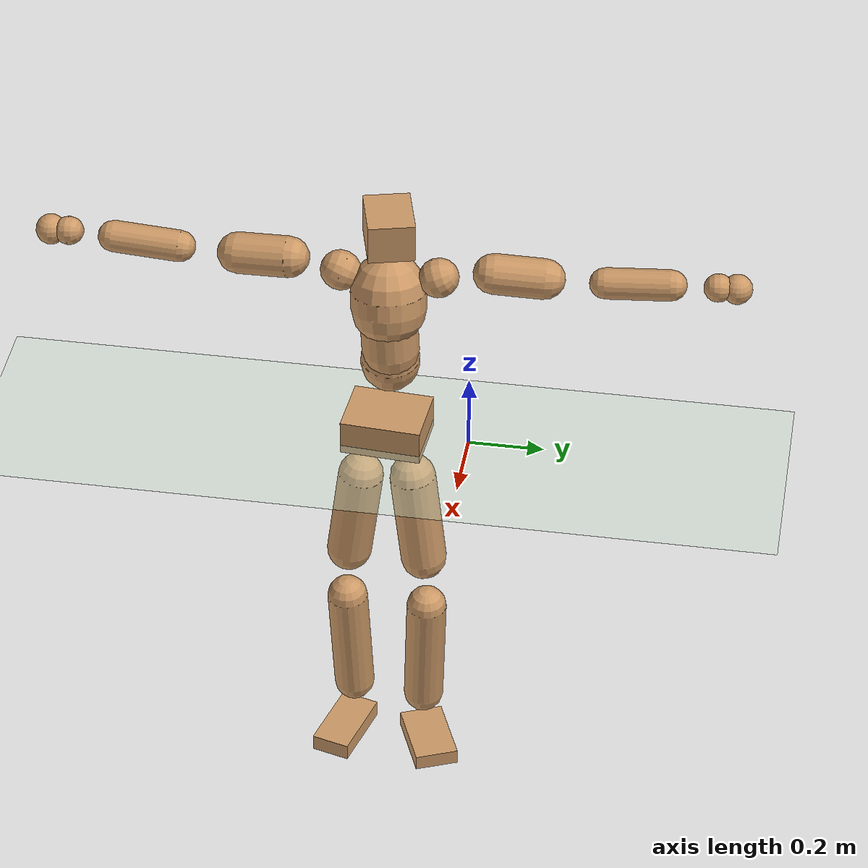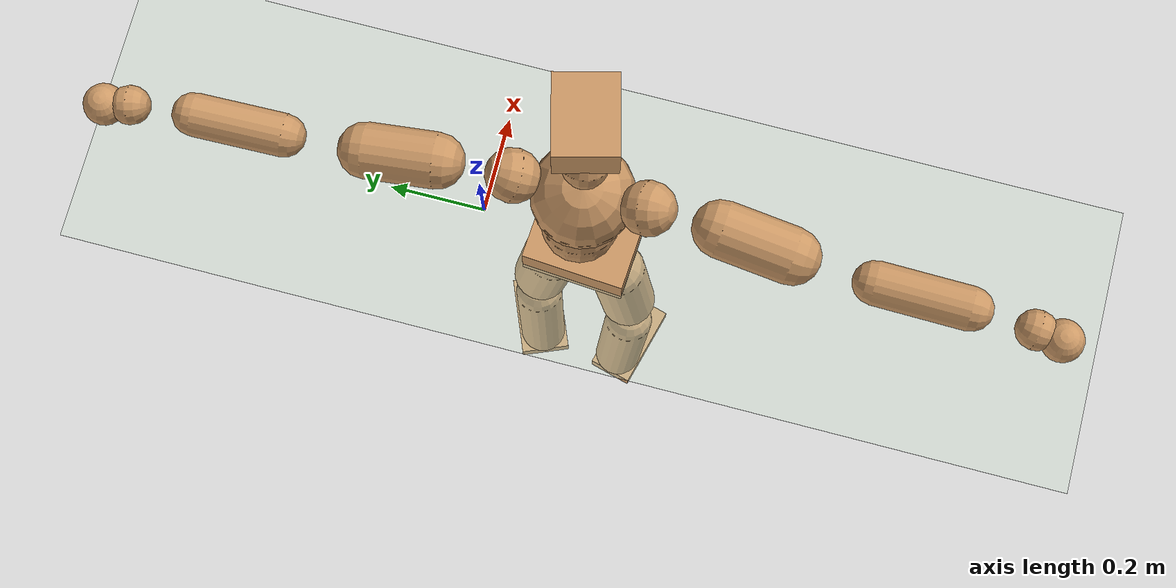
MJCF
<mujoco model="humanoid">
  <compiler coordinate="local" angle="radian"/>
  <default>
    <joint damping="0.0" armature="0.01" stiffness="0.0" limited="true"/>
    <geom conaffinity="1" condim="3" contype="7" margin="0.001" rgba="0.8 0.6 .4 1"/>
  </default>
  <asset>
    <texture type="skybox" builtin="gradient" rgb1=".4 .5 .6" rgb2="0 0 0" width="100" height="100"/>
    <texture builtin="flat" height="1278" mark="cross" markrgb="1 1 1" name="texgeom" random="0.01" rgb1="0.8 0.6 0.4" rgb2="0.8 0.6 0.4" type="cube" width="127"/>
    <texture builtin="checker" height="100" name="texplane" rgb1="0 0 0" rgb2="0.8 0.8 0.8" type="2d" width="100"/>
    <material name="MatPlane" reflectance="0.5" shininess="1" specular="1" texrepeat="60 60" texture="texplane"/>
    <material name="geom" texture="texgeom" texuniform="true"/>
  </asset>
  <worldbody>
    <light cutoff="100" diffuse="1 1 1" dir="-0 0 -1.3" directional="true" exponent="1" pos="0 0 1.3" specular=".1 .1 .1"/>
    <geom conaffinity="1" condim="3" name="floor" pos="0 0 0" rgba="0.8 0.9 0.8 1" size="100 100 .2" type="plane" material="MatPlane"/>
    <body name="Pelvis" pos="-0.0016 -0.2189 0.0304">
      <freejoint name="Pelvis"/>
      <geom type="box" contype="1" conaffinity="1" density="5359.374777" pos="-0.0118 0.0009 -0.0082" size="0.084 0.1064 0.0469" quat="0.9993 0.0000 0.0000 -0.0363" name="Pelvis"/>
      <body name="L_Hip" pos="-0.0171 0.0583 -0.0843">
        <joint name="L_Hip_x" type="hinge" pos="0 0 0" axis="1 0 0" stiffness="1600" damping="160" armature="0.02" range="-180.0000 180.0000"/>
        <joint name="L_Hip_y" type="hinge" pos="0 0 0" axis="0 1 0" stiffness="1600" damping="160" armature="0.02" range="-180.0000 180.0000"/>
        <joint name="L_Hip_z" type="hinge" pos="0 0 0" axis="0 0 1" stiffness="1600" damping="160" armature="0.02" range="-180.0000 180.0000"/>
        <geom type="capsule" contype="1" conaffinity="1" density="2040.816327" size="0.0616" fromto="0.0027 0.0111 -0.0909 0.0107 0.0435 -0.3569" name="L_Hip"/>
        <body name="L_Knee" pos="0.0135 0.0545 -0.4478">
          <joint name="L_Knee_x" type="hinge" pos="0 0 0" axis="1 0 0" stiffness="1600" damping="160" armature="0.02" range="-180.0000 180.0000"/>
          <joint name="L_Knee_y" type="hinge" pos="0 0 0" axis="0 1 0" stiffness="1600" damping="160" armature="0.02" range="-180.0000 180.0000"/>
          <joint name="L_Knee_z" type="hinge" pos="0 0 0" axis="0 0 1" stiffness="1600" damping="160" armature="0.02" range="-180.0000 180.0000"/>
          <geom type="capsule" contype="1" conaffinity="1" density="1234.567901" size="0.0541" fromto="-0.0060 -0.0026 -0.0839 -0.0303 -0.0129 -0.4231" name="L_Knee"/>
          <body name="L_Ankle" pos="-0.0363 -0.0155 -0.5069">
            <joint name="L_Ankle_x" type="hinge" pos="0 0 0" axis="1 0 0" stiffness="1600" damping="160" armature="0.02" range="-180.0000 180.0000"/>
            <joint name="L_Ankle_y" type="hinge" pos="0 0 0" axis="0 1 0" stiffness="1600" damping="160" armature="0.02" range="-180.0000 180.0000"/>
            <joint name="L_Ankle_z" type="hinge" pos="0 0 0" axis="0 0 1" stiffness="1600" damping="160" armature="0.02" range="-180.0000 180.0000"/>
            <geom type="box" contype="1" conaffinity="1" density="1000.000022" pos="0.0657 0.0271 -0.0346" size="0.095 0.0589 0.0215" quat="0.9809 0.0000 0.0000 0.1944" name="L_Ankle"/>
            <body name="L_Toe" pos="0.1313 0.0542 -0.0691">
              <joint name="L_Toe_x" type="hinge" pos="0 0 0" axis="1 0 0" stiffness="1000" damping="100" armature="0.02" range="-180.0000 180.0000"/>
              <joint name="L_Toe_y" type="hinge" pos="0 0 0" axis="0 1 0" stiffness="1000" damping="100" armature="0.02" range="-180.0000 180.0000"/>
              <joint name="L_Toe_z" type="hinge" pos="0 0 0" axis="0 0 1" stiffness="1000" damping="100" armature="0.02" range="-180.0000 180.0000"/>
              <geom type="box" contype="1" conaffinity="1" density="7919886.014422" pos="0.0000 0.0000 0.0354" size="0.0011 0.0027 0.0011" quat="0.9802 0.0000 0.0000 0.1981" name="L_Toe"/>
            </body>
          </body>
        </body>
      </body>
      <body name="R_Hip" pos="-0.013 -0.0584 -0.0939">
        <joint name="R_Hip_x" type="hinge" pos="0 0 0" axis="1 0 0" stiffness="1600" damping="160" armature="0.02" range="-180.0000 180.0000"/>
        <joint name="R_Hip_y" type="hinge" pos="0 0 0" axis="0 1 0" stiffness="1600" damping="160" armature="0.02" range="-180.0000 180.0000"/>
        <joint name="R_Hip_z" type="hinge" pos="0 0 0" axis="0 0 1" stiffness="1600" damping="160" armature="0.02" range="-180.0000 180.0000"/>
        <geom type="capsule" contype="1" conaffinity="1" density="2040.816327" size="0.0606" fromto="-0.0007 -0.0114 -0.0899 -0.0026 -0.0444 -0.3510" name="R_Hip"/>
        <body name="R_Knee" pos="-0.0033 -0.0557 -0.4409">
          <joint name="R_Knee_x" type="hinge" pos="0 0 0" axis="1 0 0" stiffness="1600" damping="160" armature="0.02" range="-180.0000 180.0000"/>
          <joint name="R_Knee_y" type="hinge" pos="0 0 0" axis="0 1 0" stiffness="1600" damping="160" armature="0.02" range="-180.0000 180.0000"/>
          <joint name="R_Knee_z" type="hinge" pos="0 0 0" axis="0 0 1" stiffness="1600" damping="160" armature="0.02" range="-180.0000 180.0000"/>
          <geom type="capsule" contype="1" conaffinity="1" density="1234.567901" size="0.0547" fromto="-0.0059 0.0035 -0.0844 -0.0288 0.0171 -0.4129" name="R_Knee"/>
          <body name="R_Ankle" pos="-0.0347 0.0206 -0.4973">
            <joint name="R_Ankle_x" type="hinge" pos="0 0 0" axis="1 0 0" stiffness="1600" damping="160" armature="0.02" range="-180.0000 180.0000"/>
            <joint name="R_Ankle_y" type="hinge" pos="0 0 0" axis="0 1 0" stiffness="1600" damping="160" armature="0.02" range="-180.0000 180.0000"/>
            <joint name="R_Ankle_z" type="hinge" pos="0 0 0" axis="0 0 1" stiffness="1600" damping="160" armature="0.02" range="-180.0000 180.0000"/>
            <geom type="box" contype="1" conaffinity="1" density="999.999963" pos="0.0713 -0.0193 -0.0349" size="0.101 0.0524 0.0231" quat="0.9913 0.0000 0.0000 -0.1318" name="R_Ankle"/>
            <body name="R_Toe" pos="0.1426 -0.0386 -0.0698">
              <joint name="R_Toe_x" type="hinge" pos="0 0 0" axis="1 0 0" stiffness="1000" damping="100" armature="0.02" range="-180.0000 180.0000"/>
              <joint name="R_Toe_y" type="hinge" pos="0 0 0" axis="0 1 0" stiffness="1000" damping="100" armature="0.02" range="-180.0000 180.0000"/>
              <joint name="R_Toe_z" type="hinge" pos="0 0 0" axis="0 0 1" stiffness="1000" damping="100" armature="0.02" range="-180.0000 180.0000"/>
              <geom type="box" contype="1" conaffinity="1" density="8976235.39602" pos="0.0000 0.0000 0.0353" size="0.001 0.0025 0.0012" quat="0.9923 0.0000 0.0000 -0.1236" name="R_Toe"/>
            </body>
          </body>
        </body>
      </body>
      <body name="Torso" pos="-0.0407 0.0053 0.1289">
        <joint name="Torso_x" type="hinge" pos="0 0 0" axis="1 0 0" stiffness="2000" damping="200" armature="0.02" range="-180.0000 180.0000"/>
        <joint name="Torso_y" type="hinge" pos="0 0 0" axis="0 1 0" stiffness="2000" damping="200" armature="0.02" range="-180.0000 180.0000"/>
        <joint name="Torso_z" type="hinge" pos="0 0 0" axis="0 0 1" stiffness="2000" damping="200" armature="0.02" range="-180.0000 180.0000"/>
        <geom type="capsule" contype="1" conaffinity="1" density="2040.816327" size="0.0772" fromto="0.0148 0.0020 0.0758 0.0110 0.0015 0.0562" name="Torso"/>
        <body name="Spine" pos="0.0258 0.0036 0.132">
          <joint name="Spine_x" type="hinge" pos="0 0 0" axis="1 0 0" stiffness="2000" damping="200" armature="0.02" range="-180.0000 180.0000"/>
          <joint name="Spine_y" type="hinge" pos="0 0 0" axis="0 1 0" stiffness="2000" damping="200" armature="0.02" range="-180.0000 180.0000"/>
          <joint name="Spine_z" type="hinge" pos="0 0 0" axis="0 0 1" stiffness="2000" damping="200" armature="0.02" range="-180.0000 180.0000"/>
          <geom type="capsule" contype="1" conaffinity="1" density="2040.816327" size="0.0753" fromto="-0.0006 -0.0042 0.0752 0.0002 0.0012 -0.0220" name="Spine"/>
          <body name="Chest" pos="-0.0004 -0.003 0.0532">
            <joint name="Chest_x" type="hinge" pos="0 0 0" axis="1 0 0" stiffness="2000" damping="200" armature="0.02" range="-180.0000 180.0000"/>
            <joint name="Chest_y" type="hinge" pos="0 0 0" axis="0 1 0" stiffness="2000" damping="200" armature="0.02" range="-180.0000 180.0000"/>
            <joint name="Chest_z" type="hinge" pos="0 0 0" axis="0 0 1" stiffness="2000" damping="200" armature="0.02" range="-180.0000 180.0000"/>
            <geom type="capsule" contype="1" conaffinity="1" density="2040.816327" size="0.0985" fromto="-0.0159 -0.0042 0.0971 -0.0082 -0.0022 0.0498" name="Chest"/>
            <body name="Neck" pos="-0.0284 -0.0104 0.208">
              <joint name="Neck_x" type="hinge" pos="0 0 0" axis="1 0 0" stiffness="1000" damping="100" armature="0.02" range="-180.0000 180.0000"/>
              <joint name="Neck_y" type="hinge" pos="0 0 0" axis="0 1 0" stiffness="1000" damping="100" armature="0.02" range="-180.0000 180.0000"/>
              <joint name="Neck_z" type="hinge" pos="0 0 0" axis="0 0 1" stiffness="1000" damping="100" armature="0.02" range="-180.0000 180.0000"/>
              <geom type="capsule" contype="1" conaffinity="1" density="1000" size="0.0438" fromto="0.0234 0.0053 0.0402 0.0244 0.0055 0.0419" name="Neck"/>
              <body name="Head" pos="0.0479 0.0108 0.0821">
                <joint name="Head_x" type="hinge" pos="0 0 0" axis="1 0 0" stiffness="1000" damping="100" armature="0.02" range="-180.0000 180.0000"/>
                <joint name="Head_y" type="hinge" pos="0 0 0" axis="0 1 0" stiffness="1000" damping="100" armature="0.02" range="-180.0000 180.0000"/>
                <joint name="Head_z" type="hinge" pos="0 0 0" axis="0 0 1" stiffness="1000" damping="100" armature="0.02" range="-180.0000 180.0000"/>
                <geom type="box" contype="1" conaffinity="1" density="2250.000162" pos="0.0249 0.0064 0.0420" size="0.076 0.0598 0.0507" quat="0.9921 0.0000 0.0000 0.1254" name="Head"/>
              </body>
            </body>
            <body name="L_Thorax" pos="-0.0209 0.0678 0.1175">
              <joint name="L_Thorax_x" type="hinge" pos="0 0 0" axis="1 0 0" stiffness="1000" damping="100" armature="0.02" range="-180.0000 180.0000"/>
              <joint name="L_Thorax_y" type="hinge" pos="0 0 0" axis="0 1 0" stiffness="1000" damping="100" armature="0.02" range="-180.0000 180.0000"/>
              <joint name="L_Thorax_z" type="hinge" pos="0 0 0" axis="0 0 1" stiffness="1000" damping="100" armature="0.02" range="-180.0000 180.0000"/>
              <geom type="capsule" contype="1" conaffinity="1" density="1000" size="0.0515" fromto="-0.0059 0.0552 0.0245 -0.0061 0.0570 0.0253" name="L_Thorax"/>
              <body name="L_Shoulder" pos="-0.0121 0.1123 0.0498">
                <joint name="L_Shoulder_x" type="hinge" pos="0 0 0" axis="1 0 0" stiffness="1000" damping="100" armature="0.02" range="-720.0000 720.0000"/>
                <joint name="L_Shoulder_y" type="hinge" pos="0 0 0" axis="0 1 0" stiffness="1000" damping="100" armature="0.02" range="-720.0000 720.0000"/>
                <joint name="L_Shoulder_z" type="hinge" pos="0 0 0" axis="0 0 1" stiffness="1000" damping="100" armature="0.02" range="-720.0000 720.0000"/>
                <geom type="capsule" contype="1" conaffinity="1" density="1000" size="0.0526" fromto="-0.0070 0.0821 -0.0058 -0.0182 0.2130 -0.0151" name="L_Shoulder"/>
                <body name="L_Elbow" pos="-0.0252 0.2951 -0.0209">
                  <joint name="L_Elbow_x" type="hinge" pos="0 0 0" axis="1 0 0" stiffness="1000" damping="100" armature="0.02" range="-720.0000 720.0000"/>
                  <joint name="L_Elbow_y" type="hinge" pos="0 0 0" axis="0 1 0" stiffness="1000" damping="100" armature="0.02" range="-720.0000 720.0000"/>
                  <joint name="L_Elbow_z" type="hinge" pos="0 0 0" axis="0 0 1" stiffness="1000" damping="100" armature="0.02" range="-720.0000 720.0000"/>
                  <geom type="capsule" contype="1" conaffinity="1" density="1000" size="0.0404" fromto="-0.0024 0.0703 0.0035 -0.0081 0.2383 0.0118" name="L_Elbow"/>
                  <body name="L_Wrist" pos="-0.0104 0.3086 0.0153">
                    <joint name="L_Wrist_x" type="hinge" pos="0 0 0" axis="1 0 0" stiffness="600" damping="60" armature="0.02" range="-180.0000 180.0000"/>
                    <joint name="L_Wrist_y" type="hinge" pos="0 0 0" axis="0 1 0" stiffness="600" damping="60" armature="0.02" range="-180.0000 180.0000"/>
                    <joint name="L_Wrist_z" type="hinge" pos="0 0 0" axis="0 0 1" stiffness="600" damping="60" armature="0.02" range="-180.0000 180.0000"/>
                    <geom type="capsule" contype="1" conaffinity="1" density="1000" size="0.0365" fromto="-0.0089 0.0470 -0.0055 -0.0093 0.0490 -0.0057" name="L_Wrist"/>
                    <body name="L_Hand" pos="-0.0182 0.096 -0.0111">
                      <joint name="L_Hand_x" type="hinge" pos="0 0 0" axis="1 0 0" stiffness="600" damping="60" armature="0.02" range="-180.0000 180.0000"/>
                      <joint name="L_Hand_y" type="hinge" pos="0 0 0" axis="0 1 0" stiffness="600" damping="60" armature="0.02" range="-180.0000 180.0000"/>
                      <joint name="L_Hand_z" type="hinge" pos="0 0 0" axis="0 0 1" stiffness="600" damping="60" armature="0.02" range="-180.0000 180.0000"/>
                      <geom type="sphere" contype="1" conaffinity="1" density="1000" size="0.0388" pos="0.0000 0.0000 0.0000" name="L_Hand"/>
                    </body>
                  </body>
                </body>
              </body>
            </body>
            <body name="R_Thorax" pos="-0.023 -0.0765 0.115">
              <joint name="R_Thorax_x" type="hinge" pos="0 0 0" axis="1 0 0" stiffness="1000" damping="100" armature="0.02" range="-180.0000 180.0000"/>
              <joint name="R_Thorax_y" type="hinge" pos="0 0 0" axis="0 1 0" stiffness="1000" damping="100" armature="0.02" range="-180.0000 180.0000"/>
              <joint name="R_Thorax_z" type="hinge" pos="0 0 0" axis="0 0 1" stiffness="1000" damping="100" armature="0.02" range="-180.0000 180.0000"/>
              <geom type="capsule" contype="1" conaffinity="1" density="1000" size="0.0522" fromto="-0.0014 -0.0518 0.0253 -0.0014 -0.0536 0.0261" name="R_Thorax"/>
              <body name="R_Shoulder" pos="-0.0028 -0.1054 0.0514">
                <joint name="R_Shoulder_x" type="hinge" pos="0 0 0" axis="1 0 0" stiffness="1000" damping="100" armature="0.02" range="-720.0000 720.0000"/>
                <joint name="R_Shoulder_y" type="hinge" pos="0 0 0" axis="0 1 0" stiffness="1000" damping="100" armature="0.02" range="-720.0000 720.0000"/>
                <joint name="R_Shoulder_z" type="hinge" pos="0 0 0" axis="0 0 1" stiffness="1000" damping="100" armature="0.02" range="-720.0000 720.0000"/>
                <geom type="capsule" contype="1" conaffinity="1" density="1000" size="0.0541" fromto="-0.0081 -0.0834 -0.0069 -0.0212 -0.2181 -0.0180" name="R_Shoulder"/>
                <body name="R_Elbow" pos="-0.0293 -0.3016 -0.0249">
                  <joint name="R_Elbow_x" type="hinge" pos="0 0 0" axis="1 0 0" stiffness="1000" damping="100" armature="0.02" range="-720.0000 720.0000"/>
                  <joint name="R_Elbow_y" type="hinge" pos="0 0 0" axis="0 1 0" stiffness="1000" damping="100" armature="0.02" range="-720.0000 720.0000"/>
                  <joint name="R_Elbow_z" type="hinge" pos="0 0 0" axis="0 0 1" stiffness="1000" damping="100" armature="0.02" range="-720.0000 720.0000"/>
                  <geom type="capsule" contype="1" conaffinity="1" density="1000" size="0.0411" fromto="-0.0020 -0.0710 0.0034 -0.0071 -0.2462 0.0118" name="R_Elbow"/>
                  <body name="R_Wrist" pos="-0.0092 -0.3172 0.0151">
                    <joint name="R_Wrist_x" type="hinge" pos="0 0 0" axis="1 0 0" stiffness="600" damping="60" armature="0.02" range="-180.0000 180.0000"/>
                    <joint name="R_Wrist_y" type="hinge" pos="0 0 0" axis="0 1 0" stiffness="600" damping="60" armature="0.02" range="-180.0000 180.0000"/>
                    <joint name="R_Wrist_z" type="hinge" pos="0 0 0" axis="0 0 1" stiffness="600" damping="60" armature="0.02" range="-180.0000 180.0000"/>
                    <geom type="capsule" contype="1" conaffinity="1" density="1000" size="0.0374" fromto="-0.0059 -0.0483 -0.0046 -0.0061 -0.0503 -0.0048" name="R_Wrist"/>
                    <body name="R_Hand" pos="-0.012 -0.0987 -0.0094">
                      <joint name="R_Hand_x" type="hinge" pos="0 0 0" axis="1 0 0" stiffness="600" damping="60" armature="0.02" range="-180.0000 180.0000"/>
                      <joint name="R_Hand_y" type="hinge" pos="0 0 0" axis="0 1 0" stiffness="600" damping="60" armature="0.02" range="-180.0000 180.0000"/>
                      <joint name="R_Hand_z" type="hinge" pos="0 0 0" axis="0 0 1" stiffness="600" damping="60" armature="0.02" range="-180.0000 180.0000"/>
                      <geom type="sphere" contype="1" conaffinity="1" density="1000" size="0.0397" pos="0.0000 0.0000 0.0000" name="R_Hand"/>
                    </body>
                  </body>
                </body>
              </body>
            </body>
          </body>
        </body>
      </body>
    </body>
  </worldbody>
  <actuator>
    <motor name="L_Hip_x" joint="L_Hip_x" gear="500"/>
    <motor name="L_Hip_y" joint="L_Hip_y" gear="500"/>
    <motor name="L_Hip_z" joint="L_Hip_z" gear="500"/>
    <motor name="L_Knee_x" joint="L_Knee_x" gear="500"/>
    <motor name="L_Knee_y" joint="L_Knee_y" gear="500"/>
    <motor name="L_Knee_z" joint="L_Knee_z" gear="500"/>
    <motor name="L_Ankle_x" joint="L_Ankle_x" gear="500"/>
    <motor name="L_Ankle_y" joint="L_Ankle_y" gear="500"/>
    <motor name="L_Ankle_z" joint="L_Ankle_z" gear="500"/>
    <motor name="L_Toe_x" joint="L_Toe_x" gear="500"/>
    <motor name="L_Toe_y" joint="L_Toe_y" gear="500"/>
    <motor name="L_Toe_z" joint="L_Toe_z" gear="500"/>
    <motor name="R_Hip_x" joint="R_Hip_x" gear="500"/>
    <motor name="R_Hip_y" joint="R_Hip_y" gear="500"/>
    <motor name="R_Hip_z" joint="R_Hip_z" gear="500"/>
    <motor name="R_Knee_x" joint="R_Knee_x" gear="500"/>
    <motor name="R_Knee_y" joint="R_Knee_y" gear="500"/>
    <motor name="R_Knee_z" joint="R_Knee_z" gear="500"/>
    <motor name="R_Ankle_x" joint="R_Ankle_x" gear="500"/>
    <motor name="R_Ankle_y" joint="R_Ankle_y" gear="500"/>
    <motor name="R_Ankle_z" joint="R_Ankle_z" gear="500"/>
    <motor name="R_Toe_x" joint="R_Toe_x" gear="500"/>
    <motor name="R_Toe_y" joint="R_Toe_y" gear="500"/>
    <motor name="R_Toe_z" joint="R_Toe_z" gear="500"/>
    <motor name="Torso_x" joint="Torso_x" gear="500"/>
    <motor name="Torso_y" joint="Torso_y" gear="500"/>
    <motor name="Torso_z" joint="Torso_z" gear="500"/>
    <motor name="Spine_x" joint="Spine_x" gear="500"/>
    <motor name="Spine_y" joint="Spine_y" gear="500"/>
    <motor name="Spine_z" joint="Spine_z" gear="500"/>
    <motor name="Chest_x" joint="Chest_x" gear="500"/>
    <motor name="Chest_y" joint="Chest_y" gear="500"/>
    <motor name="Chest_z" joint="Chest_z" gear="500"/>
    <motor name="Neck_x" joint="Neck_x" gear="500"/>
    <motor name="Neck_y" joint="Neck_y" gear="500"/>
    <motor name="Neck_z" joint="Neck_z" gear="500"/>
    <motor name="Head_x" joint="Head_x" gear="500"/>
    <motor name="Head_y" joint="Head_y" gear="500"/>
    <motor name="Head_z" joint="Head_z" gear="500"/>
    <motor name="L_Thorax_x" joint="L_Thorax_x" gear="500"/>
    <motor name="L_Thorax_y" joint="L_Thorax_y" gear="500"/>
    <motor name="L_Thorax_z" joint="L_Thorax_z" gear="500"/>
    <motor name="L_Shoulder_x" joint="L_Shoulder_x" gear="500"/>
    <motor name="L_Shoulder_y" joint="L_Shoulder_y" gear="500"/>
    <motor name="L_Shoulder_z" joint="L_Shoulder_z" gear="500"/>
    <motor name="L_Elbow_x" joint="L_Elbow_x" gear="500"/>
    <motor name="L_Elbow_y" joint="L_Elbow_y" gear="500"/>
    <motor name="L_Elbow_z" joint="L_Elbow_z" gear="500"/>
    <motor name="L_Wrist_x" joint="L_Wrist_x" gear="500"/>
    <motor name="L_Wrist_y" joint="L_Wrist_y" gear="500"/>
    <motor name="L_Wrist_z" joint="L_Wrist_z" gear="500"/>
    <motor name="L_Hand_x" joint="L_Hand_x" gear="500"/>
    <motor name="L_Hand_y" joint="L_Hand_y" gear="500"/>
    <motor name="L_Hand_z" joint="L_Hand_z" gear="500"/>
    <motor name="R_Thorax_x" joint="R_Thorax_x" gear="500"/>
    <motor name="R_Thorax_y" joint="R_Thorax_y" gear="500"/>
    <motor name="R_Thorax_z" joint="R_Thorax_z" gear="500"/>
    <motor name="R_Shoulder_x" joint="R_Shoulder_x" gear="500"/>
    <motor name="R_Shoulder_y" joint="R_Shoulder_y" gear="500"/>
    <motor name="R_Shoulder_z" joint="R_Shoulder_z" gear="500"/>
    <motor name="R_Elbow_x" joint="R_Elbow_x" gear="500"/>
    <motor name="R_Elbow_y" joint="R_Elbow_y" gear="500"/>
    <motor name="R_Elbow_z" joint="R_Elbow_z" gear="500"/>
    <motor name="R_Wrist_x" joint="R_Wrist_x" gear="500"/>
    <motor name="R_Wrist_y" joint="R_Wrist_y" gear="500"/>
    <motor name="R_Wrist_z" joint="R_Wrist_z" gear="500"/>
    <motor name="R_Hand_x" joint="R_Hand_x" gear="500"/>
    <motor name="R_Hand_y" joint="R_Hand_y" gear="500"/>
    <motor name="R_Hand_z" joint="R_Hand_z" gear="500"/>
  </actuator>
  <contact>
    <exclude body1="Torso" body2="Chest"/>
    <exclude body1="Head" body2="Chest"/>
    <exclude body1="R_Knee" body2="R_Toe"/>
    <exclude body1="R_Knee" body2="L_Ankle"/>
    <exclude body1="R_Knee" body2="L_Toe"/>
    <exclude body1="L_Knee" body2="L_Toe"/>
    <exclude body1="L_Knee" body2="R_Ankle"/>
    <exclude body1="L_Knee" body2="R_Toe"/>
    <exclude body1="L_Shoulder" body2="Chest"/>
    <exclude body1="R_Shoulder" body2="Chest"/>
  </contact>
  <sensor/>
  <size njmax="700" nconmax="700"/>
</mujoco>
